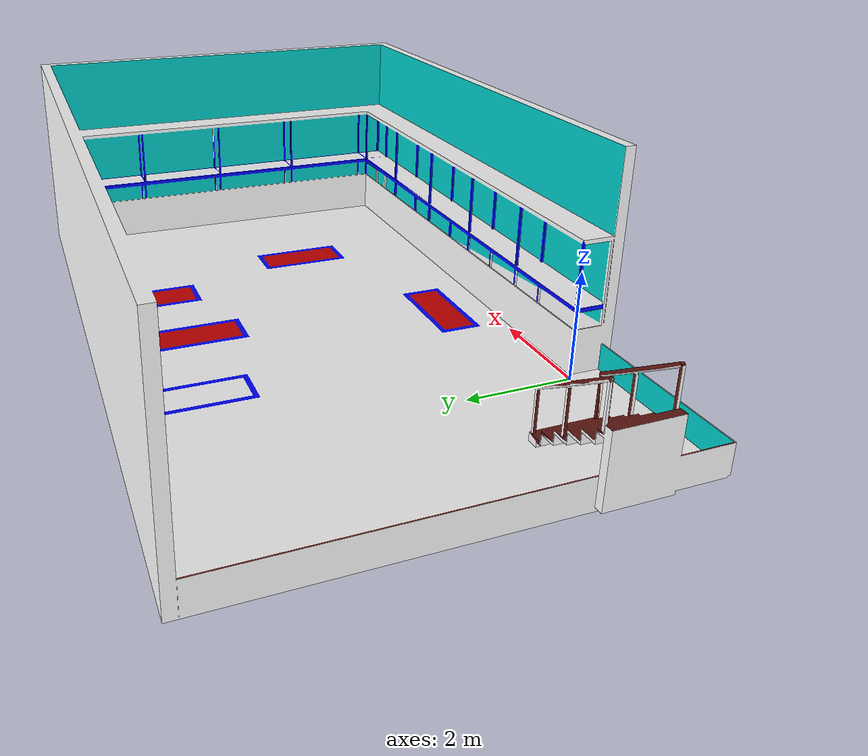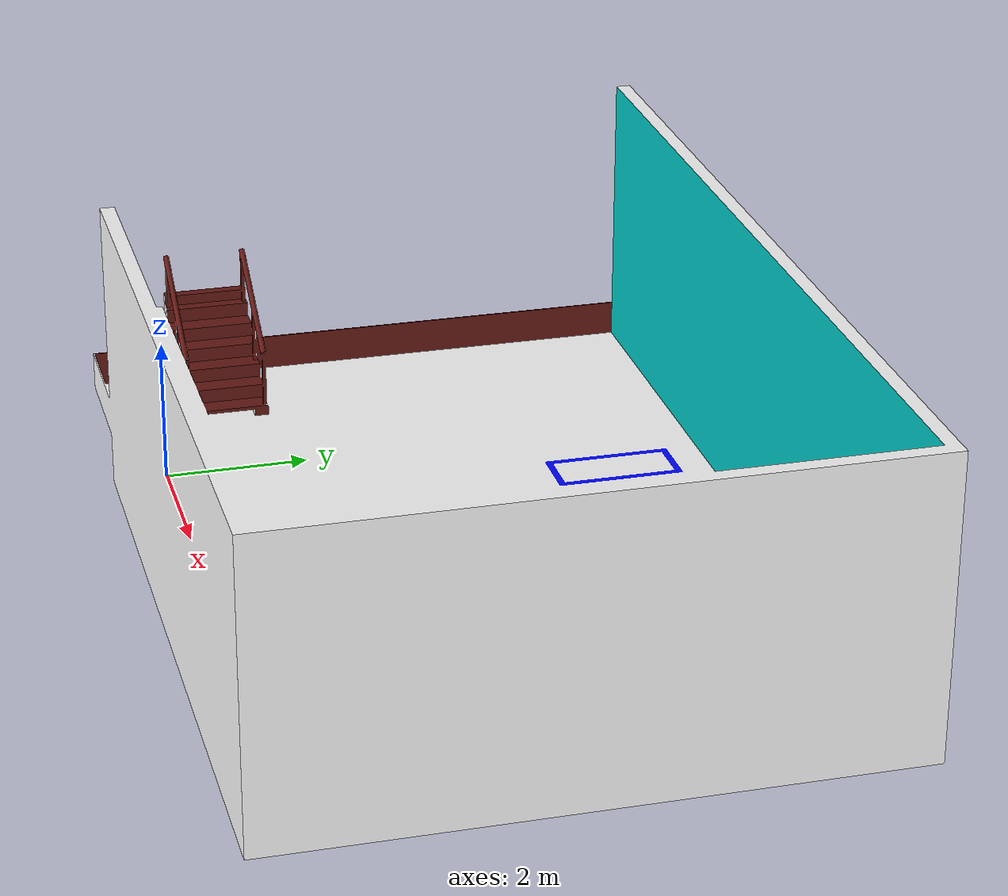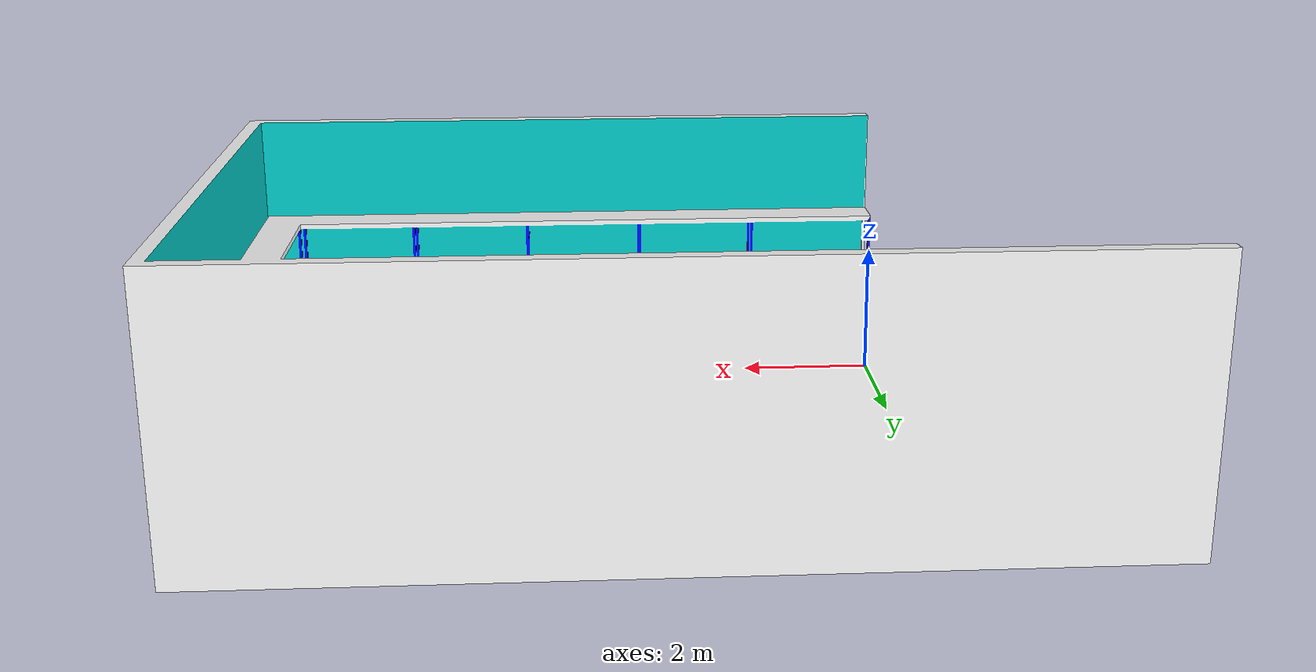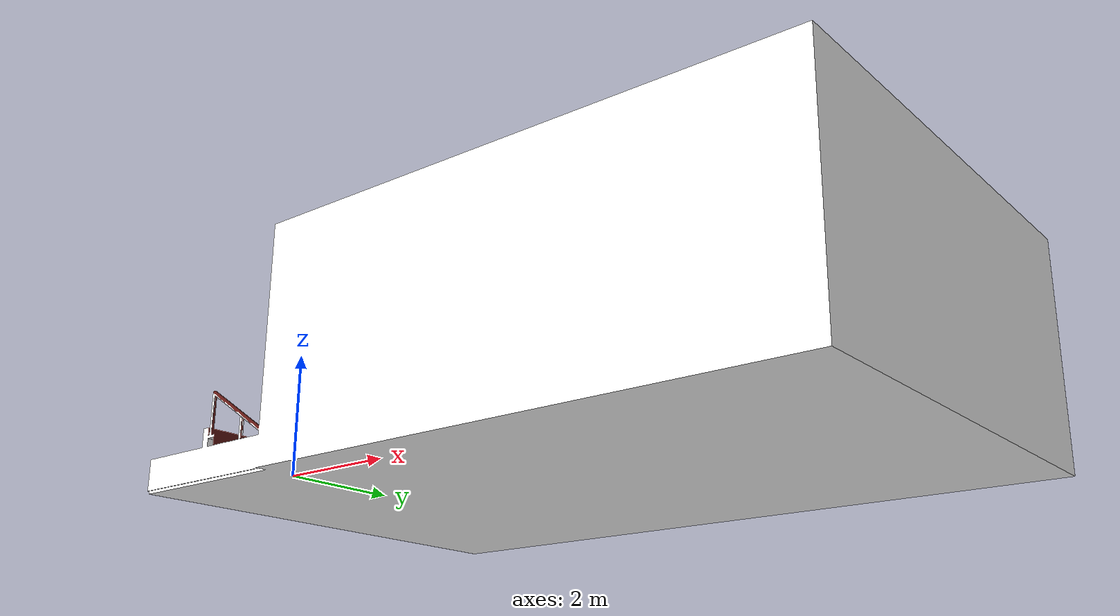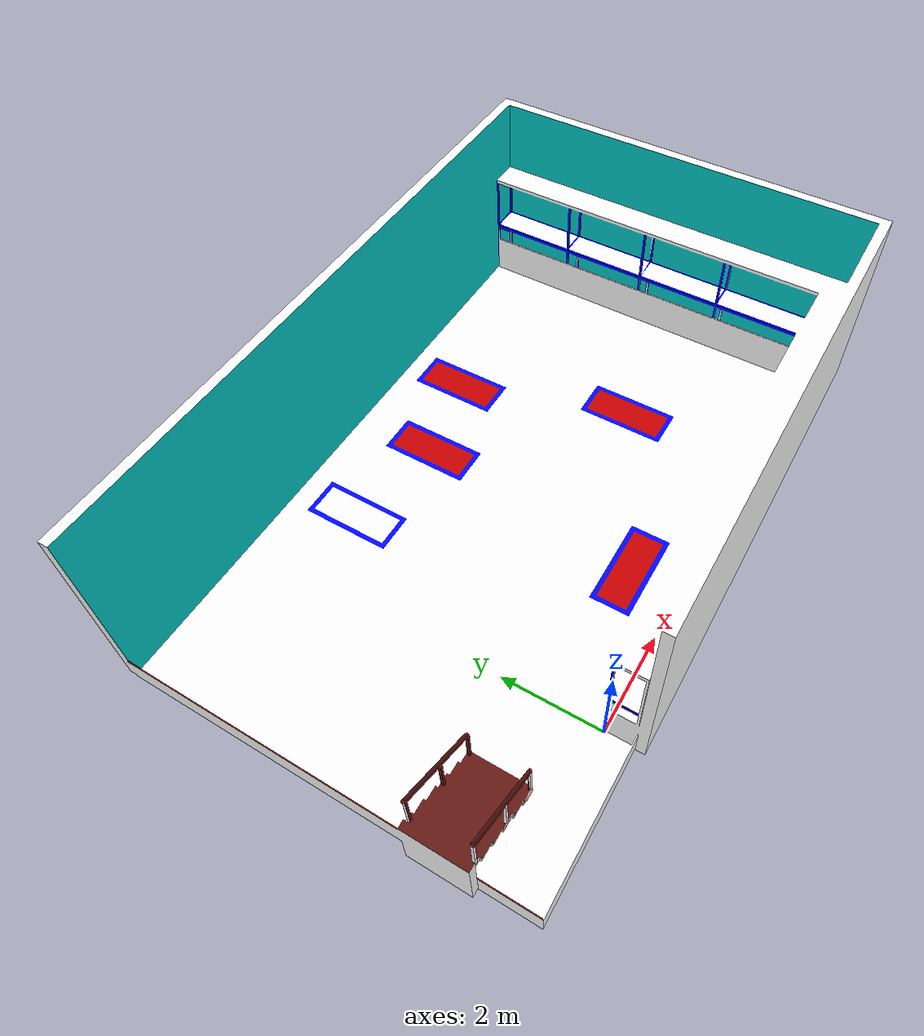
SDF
<?xml version="1.0" ?>
<sdf version="1.5">
  <model name="atolyeguncel">
     <static>true</static>
     <pose>0 0 0.1 0 0 0</pose>
     <link name="link">
      <collision name="collision">
        <geometry>
          <mesh>
            <uri>model://atolyeguncel/meshes/yeniatolye.dae</uri>
          </mesh>
        </geometry>
      </collision>
      <visual name="visual">
        <geometry>
          <mesh>
            <uri>model://atolyeguncel/meshes/yeniatolye.dae</uri>
          </mesh>
        </geometry>
      </visual>
    </link>
  </model>
</sdf>
